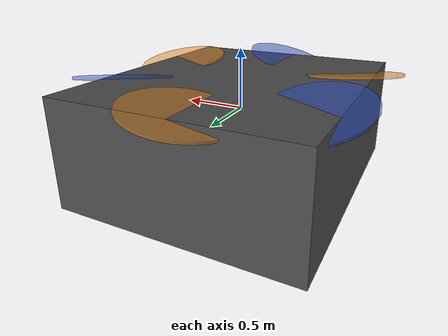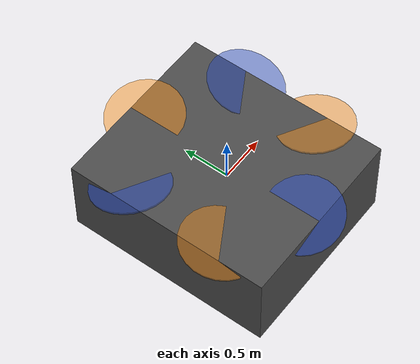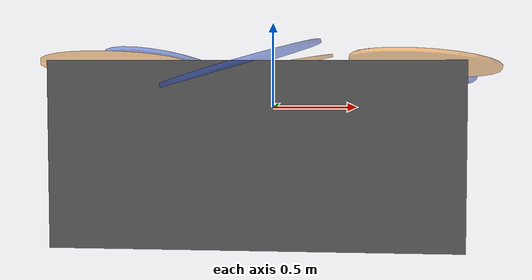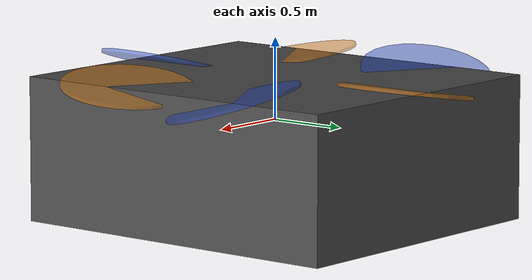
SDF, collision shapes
<?xml version="1.0"?>
<sdf version='1.5'>
  <model name='airfly_hexa'>
    <!-- Main body frame Airfly hexacopter  -->
    <link name='base_link'>
      <pose>0 0 0 0 0 0</pose> <!-- This pose is the visual offset of the vehicle + the reference frame -->
      <inertial>
        <pose>0.00248395293577031 0.000136495293976524 -0.174981555965809 0 0 0</pose> <!-- This pose is the center of mass of the vehicle 155.931459830594-->
        <mass>95</mass>
        <inertia>
          <ixx>2.93015030357653</ixx>
          <ixy>2.67282084525685e-05</ixy>
          <ixz>0.0449250956057515</ixz>
          <iyy>2.98862504201484</iyy>
          <iyz>6.44540809146554e-05</iyz>
          <izz>4.78028912562783</izz>
        </inertia>
      </inertial>
      <collision name='base_link_collision'>
        <pose>0 0 -0.175 0 0 0</pose> <!-- The z Axis has an offset to create a centered box for collisions https://answers.gazebosim.org//question/17457/robot-slips-after-upgrade-to-kinetic/ -->
        <geometry>
          <box>
            <size>1.944514 2.23189 0.886246</size>
          </box>
        </geometry>
        <surface>
          <friction>
            <ode>
              <mu>100000.0</mu>
              <mu2>100000.0</mu2>
              <fdir1>1 0 0</fdir1>
              <slip1>0.0</slip1>
              <slip2>0.0</slip2>
            </ode>
          </friction>
          <contact>
            <ode>
              <min_depth>0.01</min_depth>
              <max_vel>1</max_vel>
            </ode>
          </contact>
        </surface>
      </collision>
      <visual name='base_link_visual'>
        <pose>0 0 0 0 0 0</pose>
        <geometry>
          <mesh>
            <scale>1 1 1</scale>
            <uri>model://airfly_hexa/meshes/base_link.STL</uri>
          </mesh>
        </geometry>
        <material>
          <script>
            <name>Gazebo/DarkGrey</name>
            <uri>file://media/materials/scripts/gazebo.material</uri>
          </script>
        </material>
      </visual>
      <gravity>1</gravity>
      <velocity_decay/>
   </link>

   <!-- IMU link-->
   <link name='/imu_link'>
      <pose>0 0 0 0 0 0</pose>
      <inertial>
        <pose>0 0 0 0 0 0</pose>
        <mass>0.015</mass>
        <inertia>
          <ixx>1e-05</ixx>
          <ixy>0</ixy>
          <ixz>0</ixz>
          <iyy>1e-05</iyy>
          <iyz>0</iyz>
          <izz>1e-05</izz>
        </inertia>
      </inertial>
    </link>
    <joint name='/imu_joint' type='revolute'>
      <child>/imu_link</child>
      <parent>base_link</parent>
      <axis>
        <xyz>1 0 0</xyz>
        <limit>
          <lower>0</lower>
          <upper>0</upper>
          <effort>0</effort>
          <velocity>0</velocity>
        </limit>
        <dynamics>
          <spring_reference>0</spring_reference>
          <spring_stiffness>0</spring_stiffness>
        </dynamics>
        <use_parent_model_frame>1</use_parent_model_frame>
      </axis>
    </joint>

    <!-- Rotor 1-->
    <link name='rotor_0'>
    <pose>0.8659 0.40285 0.25157 0.24252 0.13781 0.017864</pose>
      <inertial>
        <pose>-5.7506e-05 -0.0012881 7.3747e-05 0 0 0</pose>
        <mass>0.4177</mass>
        <inertia>
          <ixx>0.0053435</ixx>
          <ixy>-3.2435e-05</ixy>
          <ixz>-1.7561e-07</ixz>
          <iyy>0.00011193</iyy>
          <iyz>1.3276e-07</iyz>
          <izz>0.005443</izz>
        </inertia>
      </inertial>
      <collision name='rotor_0_collision'>
        <pose>0 0 0 0 0 0</pose>
        <geometry>
          <cylinder>
            <length>0.02</length>
            <radius>0.406</radius>
          </cylinder>
        </geometry>
        <surface>
          <contact>
            <ode/>
          </contact>
          <friction>
            <ode/>
          </friction>
        </surface>
      </collision>
      <visual name='rotor_0_visual'>
        <pose>0 0 0 0 0 0</pose>
        <geometry>
          <mesh>
            <scale>1 1 1</scale>
            <uri>model://airfly_hexa/meshes/rotor_1.STL</uri>
          </mesh>
        </geometry>
        <material>
          <script>
            <name>Gazebo/BlueTransparent</name>
            <uri>file://media/materials/scripts/gazebo.material</uri>
          </script>
        </material>
      </visual>
      <gravity>1</gravity>
      <velocity_decay/>
      <self_collide>0</self_collide>
    </link>
    <joint name='rotor_0_joint' type='revolute'>
      <child>rotor_0</child>
      <parent>base_link</parent>
      <pose>0 0 0 0 0 0</pose>
      <axis>
        <xyz>0 0 1</xyz>
        <limit>
          <lower>-1e+16</lower>
          <upper>1e+16</upper>
        </limit>
        <dynamics>
          <spring_reference>0</spring_reference>
          <spring_stiffness>0</spring_stiffness>
        </dynamics>
        <use_parent_model_frame>1</use_parent_model_frame>
      </axis>
    </joint>

    <!-- Rotor 2-->
    <link name='rotor_1'>
    <pose>0.85004 -0.42999 0.25919 0.167 -0.005845 2.6538</pose>
      <inertial>
        <pose>-5.7448e-05 -0.0012862 7.3696e-05 0 0 0</pose>
        <mass>0.4177</mass>
        <inertia>
          <ixx>0.0053435</ixx>
          <ixy>-3.2434e-05</ixy>
          <ixz>-1.7607e-07</ixz>
          <iyy>0.00011193</iyy>
          <iyz>1.3339e-07</iyz>
          <izz>0.005443</izz>
        </inertia>
      </inertial>
      <collision name='rotor_1_collision'>
        <pose>0 0 0 0 0 0</pose>
        <geometry>
          <cylinder>
            <length>0.02</length>
            <radius>0.406</radius>
          </cylinder>
        </geometry>
        <surface>
          <contact>
            <ode/>
          </contact>
          <friction>
            <ode/>
          </friction>
        </surface>
      </collision>
      <visual name='rotor_1_visual'>
        <pose>0 0 0 0 0 0</pose>
        <geometry>
          <mesh>
            <scale>1 1 1</scale>
            <uri>model://airfly_hexa/meshes/rotor_1.STL</uri>
          </mesh>
        </geometry>
        <material>
          <script>
            <name>Gazebo/OrangeTransparent</name>
            <uri>file://media/materials/scripts/gazebo.material</uri>
          </script>
        </material>
      </visual>
      <gravity>1</gravity>
      <velocity_decay/>
      <self_collide>0</self_collide>
    </link>
    <joint name='rotor_1_joint' type='revolute'>
      <child>rotor_1</child>
      <parent>base_link</parent>
      <pose>0 0 0 0 0 0</pose>
      <axis>
        <xyz>0 0 1</xyz>
        <limit>
          <lower>-1e+16</lower>
          <upper>1e+16</upper>
        </limit>
        <dynamics>
          <spring_reference>0</spring_reference>
          <spring_stiffness>0</spring_stiffness>
        </dynamics>
        <use_parent_model_frame>1</use_parent_model_frame>
      </axis>
    </joint>

    <!-- Rotor 3-->
    <link name='rotor_2'>
    <pose>-0.084071 -0.95131 0.25157 -0.0029981 0.27825 3.1318</pose>
      <inertial>
        <pose>-5.7506e-05 -0.0012881 7.3729e-05 0 0 0</pose>
        <mass>0.4177</mass>
        <inertia>
          <ixx>0.0053435</ixx>
          <ixy>-3.2435e-05</ixy>
          <ixz>-1.7611e-07</ixz>
          <iyy>0.00011193</iyy>
          <iyz>1.3111e-07</iyz>
          <izz>0.005443</izz>
        </inertia>
      </inertial>
      <collision name='rotor_2_collision'>
        <pose>0 0 0 0 0 0</pose>
        <geometry>
          <cylinder>
            <length>0.02</length>
            <radius>0.406</radius>
          </cylinder>
        </geometry>
        <surface>
          <contact>
            <ode/>
          </contact>
          <friction>
            <ode/>
          </friction>
        </surface>
      </collision>
      <visual name='rotor_2_visual'>
        <pose>0 0 0 0 0 0</pose>
        <geometry>
          <mesh>
            <scale>1 1 1</scale>
            <uri>model://airfly_hexa/meshes/rotor_1.STL</uri>
          </mesh>
        </geometry>
        <material>
          <script>
            <name>Gazebo/BlueTransparent</name>
            <uri>file://media/materials/scripts/gazebo.material</uri>
          </script>
        </material>
      </visual>
      <gravity>1</gravity>
      <velocity_decay/>
      <self_collide>0</self_collide>
    </link>
    <joint name='rotor_2_joint' type='revolute'>
      <child>rotor_2</child>
      <parent>base_link</parent>
      <pose>0 0 0 0 0 0</pose>
      <axis>
        <xyz>0 0 1</xyz>
        <limit>
          <lower>-1e+16</lower>
          <upper>1e+16</upper>
        </limit>
        <dynamics>
          <spring_reference>0</spring_reference>
          <spring_stiffness>0</spring_stiffness>
        </dynamics>
        <use_parent_model_frame>1</use_parent_model_frame>
      </axis>
    </joint>

    <!-- Rotor 4-->
    <link name='rotor_3'>
    <pose>-0.7974 -0.52116 0.25919 0.14504 0.083268 0.0071482</pose>
      <inertial>
        <pose>-5.7507e-05 -0.0012881 7.3743e-05 0 0 0</pose>
        <mass>0.4177</mass>
        <inertia>
          <ixx>0.0053435</ixx>
          <ixy>-3.2434e-05</ixy>
          <ixz>-1.756e-07</ixz>
          <iyy>0.00011193</iyy>
          <iyz>1.3269e-07</iyz>
          <izz>0.005443</izz>
        </inertia>
      </inertial>
      <collision name='rotor_3_collision'>
        <pose>0 0 0 0 0 0</pose>
        <geometry>
          <cylinder>
            <length>0.02</length>
            <radius>0.406</radius>
          </cylinder>
        </geometry>
        <surface>
          <contact>
            <ode/>
          </contact>
          <friction>
            <ode/>
          </friction>
        </surface>
      </collision>
      <visual name='rotor_3_visual'>
        <pose>0 0 0 0 0 0</pose>
        <geometry>
          <mesh>
            <scale>1 1 1</scale>
            <uri>model://airfly_hexa/meshes/rotor_1.STL</uri>
          </mesh>
        </geometry>
        <material>
          <script>
            <name>Gazebo/OrangeTransparent</name>
            <uri>file://media/materials/scripts/gazebo.material</uri>
          </script>
        </material>
      </visual>
      <gravity>1</gravity>
      <velocity_decay/>
      <self_collide>0</self_collide>
    </link>
    <joint name='rotor_3_joint' type='revolute'>
      <child>rotor_3</child>
      <parent>base_link</parent>
      <pose>0 0 0 0 0 0</pose>
      <axis>
        <xyz>0 0 1</xyz>
        <limit>
          <lower>-1e+16</lower>
          <upper>1e+16</upper>
        </limit>
        <dynamics>
          <spring_reference>0</spring_reference>
          <spring_stiffness>0</spring_stiffness>
        </dynamics>
        <use_parent_model_frame>1</use_parent_model_frame>
      </axis>
    </joint>

    <!-- Rotor 5-->
    <link name='rotor_4'>
    <pose>-0.78182 0.54846 0.25157 -0.24255 0.13775 -0.01577</pose>
      <inertial>
        <pose>-5.7509e-05 -0.0012881 7.3721e-05 0 0 0</pose>
        <mass>0.4177</mass>
        <inertia>
          <ixx>0.0053435</ixx>
          <ixy>-3.2435e-05</ixy>
          <ixz>-1.7558e-07</ixz>
          <iyy>0.00011193</iyy>
          <iyz>1.3236e-07</iyz>
          <izz>0.005443</izz>
        </inertia>
      </inertial>
      <collision name='rotor_4_collision'>
        <pose>0 0 0 0 0 0</pose>
        <geometry>
          <cylinder>
            <length>0.02</length>
            <radius>0.406</radius>
          </cylinder>
        </geometry>
        <surface>
          <contact>
            <ode/>
          </contact>
          <friction>
            <ode/>
          </friction>
        </surface>
      </collision>
      <visual name='rotor_4_visual'>
        <pose>0 0 0 0 0 0</pose>
        <geometry>
          <mesh>
            <scale>1 1 1</scale>
            <uri>model://airfly_hexa/meshes/rotor_1.STL</uri>
          </mesh>
        </geometry>
        <material>
          <script>
            <name>Gazebo/BlueTransparent</name>
            <uri>file://media/materials/scripts/gazebo.material</uri>
          </script>
        </material>
      </visual>
      <gravity>1</gravity>
      <velocity_decay/>
      <self_collide>0</self_collide>
    </link>
    <joint name='rotor_4_joint' type='revolute'>
      <child>rotor_4</child>
      <parent>base_link</parent>
      <pose>0 0 0 0 0 0</pose>
      <axis>
        <xyz>0 0 1</xyz>
        <limit>
          <lower>-1e+16</lower>
          <upper>1e+16</upper>
        </limit>
        <dynamics>
          <spring_reference>0</spring_reference>
          <spring_stiffness>0</spring_stiffness>
        </dynamics>
        <use_parent_model_frame>1</use_parent_model_frame>
      </axis>
    </joint>

    <!-- Rotor 6-->
    <link name='rotor_5'>
    <pose>-0.052635 0.95115 0.25919 -2.5657e-05 -0.1671 0.0013258</pose>
      <inertial>
        <pose>-5.7509e-05 -0.0012881 7.3721e-05 0 0 0</pose>
        <mass>0.4177</mass>
        <inertia>
          <ixx>0.0053435</ixx>
          <ixy>-3.2435e-05</ixy>
          <ixz>-1.7558e-07</ixz>
          <iyy>0.00011193</iyy>
          <iyz>1.3236e-07</iyz>
          <izz>0.005443</izz>
        </inertia>
      </inertial>
      <collision name='rotor_5_collision'>
        <pose>0 0 0 0 0 0</pose>
        <geometry>
          <cylinder>
            <length>0.02</length>
            <radius>0.406</radius>
          </cylinder>
        </geometry>
        <surface>
          <contact>
            <ode/>
          </contact>
          <friction>
            <ode/>
          </friction>
        </surface>
      </collision>
      <visual name='rotor_5_visual'>
        <pose>0 0 0 0 0 0</pose>
        <geometry>
          <mesh>
            <scale>1 1 1</scale>
            <uri>model://airfly_hexa/meshes/rotor_1.STL</uri>
          </mesh>
        </geometry>
        <material>
          <script>
            <name>Gazebo/OrangeTransparent</name>
            <uri>file://media/materials/scripts/gazebo.material</uri>
          </script>
        </material>
      </visual>
      <gravity>1</gravity>
      <velocity_decay/>
      <self_collide>0</self_collide>
    </link>
    <joint name='rotor_5_joint' type='revolute'>
      <child>rotor_5</child>
      <parent>base_link</parent>
      <pose>0 0 0 0 0 0</pose>
      <axis>
        <xyz>0 0 1</xyz>
        <limit>
          <lower>-1e+16</lower>
          <upper>1e+16</upper>
        </limit>
        <dynamics>
          <spring_reference>0</spring_reference>
          <spring_stiffness>0</spring_stiffness>
        </dynamics>
        <use_parent_model_frame>1</use_parent_model_frame>
      </axis>
    </joint>

    <!--LiDAR -->
    <link name="lidar_lite::link">
      <pose>0 0 -0.36 0 0 0</pose>
      <inertial>
        <pose>0 0 0 0 0 0</pose>
        <mass>0.01</mass>
        <inertia>
          <ixx>2.1733e-6</ixx>
          <ixy>0</ixy>
          <ixz>0</ixz>
          <iyy>2.1733e-6</iyy>
          <iyz>0</iyz>
          <izz>1.8e-7</izz>
        </inertia>
      </inertial>
      <visual name="lidar_lite_visual">
      	<pose>0 0 0 0 0 0</pose>
        <geometry>
          <mesh>
            <scale>0.002 0.002 0.002</scale>
            <uri>model://airfly_hexa/meshes/Lidar_Lite_Laser_Optics.STL</uri>
          </mesh>
        </geometry>
        <material>
          <script>
            <name>Gazebo/White</name>
            <uri>file://media/materials/scripts/gazebo.material</uri>
          </script>
        </material>
      </visual>
      <sensor name="laser" type="ray">
        <pose>0 0 -0.21 0 1.57079633 0</pose>
        <ray>
          <scan>
            <horizontal>
              <samples>1</samples>
              <resolution>1</resolution>
              <min_angle>-0</min_angle>
              <max_angle>0</max_angle>
            </horizontal>
          </scan>
          <range>
            <min>0.06</min>
            <max>35</max>
            <resolution>0.01</resolution>
          </range>
          <noise>
            <type>gaussian</type>
            <mean>0.0</mean>
            <stddev>0.02</stddev>
          </noise>
        </ray>
        <plugin name="LaserLitePlugin" filename="libgazebo_lidar_lite_plugin.so">
          <robotNamespace></robotNamespace>
          <min_distance>0.08</min_distance>
          <max_distance>30.0</max_distance>
        </plugin>
        <always_on>1</always_on>
        <update_rate>20</update_rate>
        <visualize>true</visualize>
      </sensor>
    </link>

    <!--LiDAR Joint  -->
    <joint name="lidar_joint" type="fixed">
      <child>lidar_lite::link</child>
      <parent>base_link</parent>
      <axis>
        <use_parent_model_frame>1</use_parent_model_frame>
      </axis>
	  </joint>

    <!-- Rosbag Plugin-->
    <plugin name='rosbag' filename='libgazebo_multirotor_base_plugin.so'>
      <robotNamespace/>
      <linkName>base_link</linkName>
      <rotorVelocitySlowdownSim>10</rotorVelocitySlowdownSim>
    </plugin>

    <plugin name='front_right_motor_model' filename='libgazebo_motor_model.so'>
      <robotNamespace></robotNamespace>
      <jointName>rotor_1_joint</jointName>
      <linkName>rotor_1</linkName>
      <turningDirection>ccw</turningDirection>
      <timeConstantUp>0.0125</timeConstantUp>
      <timeConstantDown>0.025</timeConstantDown>
      <maxRotVelocity>470</maxRotVelocity>
      <motorConstant>12.010474e-04</motorConstant>
      <momentConstant>0.06</momentConstant>
      <commandSubTopic>/gazebo/command/motor_speed</commandSubTopic>
      <motorNumber>4</motorNumber>
      <rotorDragCoefficient>0.002557889</rotorDragCoefficient>
      <rollingMomentCoefficient>3.172e-06</rollingMomentCoefficient>
      <motorSpeedPubTopic>/motor_speed/4</motorSpeedPubTopic>
      <rotorVelocitySlowdownSim>3</rotorVelocitySlowdownSim>
    </plugin>

    <plugin name='back_left_motor_model' filename='libgazebo_motor_model.so'>
      <robotNamespace></robotNamespace>
      <jointName>rotor_4_joint</jointName>
      <linkName>rotor_4</linkName>
      <turningDirection>cw</turningDirection>
      <timeConstantUp>0.0125</timeConstantUp>
      <timeConstantDown>0.025</timeConstantDown>
      <maxRotVelocity>470</maxRotVelocity>
      <motorConstant>12.010474e-04</motorConstant>
      <momentConstant>0.06</momentConstant>
      <commandSubTopic>/gazebo/command/motor_speed</commandSubTopic>
      <motorNumber>5</motorNumber>
      <rotorDragCoefficient>0.002557889</rotorDragCoefficient>
      <rollingMomentCoefficient>3.172e-06</rollingMomentCoefficient>
      <motorSpeedPubTopic>/motor_speed/5</motorSpeedPubTopic>
      <rotorVelocitySlowdownSim>3</rotorVelocitySlowdownSim>
    </plugin>

    <plugin name='front_left_motor_model' filename='libgazebo_motor_model.so'>
      <robotNamespace></robotNamespace>
      <jointName>rotor_0_joint</jointName>
      <linkName>rotor_0</linkName>
      <turningDirection>cw</turningDirection>
      <timeConstantUp>0.0125</timeConstantUp>
      <timeConstantDown>0.025</timeConstantDown>
      <maxRotVelocity>470</maxRotVelocity>
      <motorConstant>12.010474e-04</motorConstant>
      <momentConstant>0.06</momentConstant>
      <commandSubTopic>/gazebo/command/motor_speed</commandSubTopic>
      <motorNumber>2</motorNumber>
      <rotorDragCoefficient>0.002557889</rotorDragCoefficient>
      <rollingMomentCoefficient>3.172e-06</rollingMomentCoefficient>
      <motorSpeedPubTopic>/motor_speed/2</motorSpeedPubTopic>
      <rotorVelocitySlowdownSim>3</rotorVelocitySlowdownSim>
    </plugin>

    <plugin name='back_right_motor_model' filename='libgazebo_motor_model.so'>
      <robotNamespace></robotNamespace>
      <jointName>rotor_3_joint</jointName>
      <linkName>rotor_3</linkName>
      <turningDirection>ccw</turningDirection>
      <timeConstantUp>0.0125</timeConstantUp>
      <timeConstantDown>0.025</timeConstantDown>
      <maxRotVelocity>470</maxRotVelocity>
      <motorConstant>12.010474e-04</motorConstant>
      <momentConstant>0.06</momentConstant>
      <commandSubTopic>/gazebo/command/motor_speed</commandSubTopic>
      <motorNumber>3</motorNumber>
      <rotorDragCoefficient>0.002557889</rotorDragCoefficient>
      <rollingMomentCoefficient>3.172e-06</rollingMomentCoefficient>
      <motorSpeedPubTopic>/motor_speed/3</motorSpeedPubTopic>
      <rotorVelocitySlowdownSim>3</rotorVelocitySlowdownSim>
    </plugin>

    <plugin name='back_left_motor_model' filename='libgazebo_motor_model.so'>
      <robotNamespace></robotNamespace>
      <jointName>rotor_2_joint</jointName>
      <linkName>rotor_2</linkName>
      <turningDirection>cw</turningDirection>
      <timeConstantUp>0.0125</timeConstantUp>
      <timeConstantDown>0.025</timeConstantDown>
      <maxRotVelocity>470</maxRotVelocity>
      <motorConstant>12.010474e-04</motorConstant>
      <momentConstant>0.06</momentConstant>
      <commandSubTopic>/gazebo/command/motor_speed</commandSubTopic>
      <motorNumber>0</motorNumber>
      <rotorDragCoefficient>0.002557889</rotorDragCoefficient>
      <rollingMomentCoefficient>3.172e-06</rollingMomentCoefficient>
      <motorSpeedPubTopic>/motor_speed/0</motorSpeedPubTopic>
      <rotorVelocitySlowdownSim>3</rotorVelocitySlowdownSim>
    </plugin>

    <plugin name='front_left_motor_model' filename='libgazebo_motor_model.so'>
      <robotNamespace></robotNamespace>
      <jointName>rotor_5_joint</jointName>
      <linkName>rotor_5</linkName>
      <turningDirection>ccw</turningDirection>
      <timeConstantUp>0.0125</timeConstantUp>
      <timeConstantDown>0.025</timeConstantDown>
      <maxRotVelocity>470</maxRotVelocity>
      <motorConstant>12.010474e-04</motorConstant>
      <momentConstant>0.06</momentConstant>
      <commandSubTopic>/gazebo/command/motor_speed</commandSubTopic>
      <motorNumber>1</motorNumber>
      <rotorDragCoefficient>0.002557889</rotorDragCoefficient>
      <rollingMomentCoefficient>3.172e-06</rollingMomentCoefficient>
      <motorSpeedPubTopic>/motor_speed/1</motorSpeedPubTopic>
      <rotorVelocitySlowdownSim>3</rotorVelocitySlowdownSim>
    </plugin>

    <!-- GPS Plugin-->
    <plugin name='gps_plugin' filename='libgazebo_gps_plugin.so'>
      <robotNamespace/>
      <gpsNoise>true</gpsNoise>
    </plugin>

    <!-- Magnetometer Plugin-->
    <plugin name='magnetometer_plugin' filename='libgazebo_magnetometer_plugin.so'>
      <robotNamespace/>
      <pubRate>20</pubRate>
      <noiseDensity>0.0004</noiseDensity>
      <randomWalk>6.4e-06</randomWalk>
      <biasCorrelationTime>600</biasCorrelationTime>
      <magTopic>/mag</magTopic>
    </plugin>

    <!-- Barometer Plugin-->
    <plugin name='barometer_plugin' filename='libgazebo_barometer_plugin.so'>
      <robotNamespace/>
      <pubRate>10</pubRate>
      <baroTopic>/baro</baroTopic>
    </plugin>

    <!-- Mavlink Plugin-->
    <plugin name='mavlink_interface' filename='libgazebo_mavlink_interface.so'>
      <robotNamespace/>
      <imuSubTopic>/imu</imuSubTopic>
      <gpsSubTopic>/gps</gpsSubTopic>
      <magSubTopic>/mag</magSubTopic>
      <baroSubTopic>/baro</baroSubTopic>
      <mavlink_addr>INADDR_ANY</mavlink_addr>
      <mavlink_udp_port>14560</mavlink_udp_port>
      <mavlink_tcp_port>4560</mavlink_tcp_port>
      <serialEnabled>0</serialEnabled>
      <serialDevice>/dev/ttyACM0</serialDevice>
      <baudRate>921600</baudRate>
      <qgc_addr>INADDR_ANY</qgc_addr>
      <qgc_udp_port>14550</qgc_udp_port>
      <sdk_addr>INADDR_ANY</sdk_addr>
      <sdk_udp_port>14540</sdk_udp_port>
      <hil_mode>0</hil_mode>
      <hil_state_level>0</hil_state_level>
      <enable_lockstep>0</enable_lockstep>
      <use_tcp>1</use_tcp>
      <vehicle_is_tailsitter>0</vehicle_is_tailsitter>
      <send_vision_estimation>1</send_vision_estimation>
      <send_odometry>0</send_odometry>
      <motorSpeedCommandPubTopic>/gazebo/command/motor_speed</motorSpeedCommandPubTopic>
      <control_channels>
        <channel name='rotor0'>
          <input_index>0</input_index>
          <input_offset>0</input_offset>
          <input_scaling>470</input_scaling>
          <zero_position_disarmed>0</zero_position_disarmed>
          <zero_position_armed>100</zero_position_armed>
          <joint_control_type>velocity</joint_control_type>
          <joint_name>rotor_2_joint</joint_name>
        </channel>
        <channel name='rotor1'>
          <input_index>1</input_index>
          <input_offset>0</input_offset>
          <input_scaling>470</input_scaling>
          <zero_position_disarmed>0</zero_position_disarmed>
          <zero_position_armed>100</zero_position_armed>
          <joint_control_type>velocity</joint_control_type>
          <joint_name>rotor_5_joint</joint_name>
        </channel>
        <channel name='rotor2'>
          <input_index>2</input_index>
          <input_offset>0</input_offset>
          <input_scaling>470</input_scaling>
          <zero_position_disarmed>0</zero_position_disarmed>
          <zero_position_armed>100</zero_position_armed>
          <joint_control_type>velocity</joint_control_type>
          <joint_name>rotor_0_joint</joint_name>
        </channel>
        <channel name='rotor3'>
          <input_index>3</input_index>
          <input_offset>0</input_offset>
          <input_scaling>470</input_scaling>
          <zero_position_disarmed>0</zero_position_disarmed>
          <zero_position_armed>100</zero_position_armed>
          <joint_control_type>velocity</joint_control_type>
          <joint_name>rotor_3_joint</joint_name>
        </channel>
        <channel name='rotor4'>
          <input_index>4</input_index>
          <input_offset>0</input_offset>
          <input_scaling>470</input_scaling>
          <zero_position_disarmed>0</zero_position_disarmed>
          <zero_position_armed>100</zero_position_armed>
          <joint_control_type>velocity</joint_control_type>
          <joint_name>rotor_1_joint</joint_name>
        </channel>
        <channel name='rotor5'>
          <input_index>5</input_index>
          <input_offset>0</input_offset>
          <input_scaling>470</input_scaling>
          <zero_position_disarmed>0</zero_position_disarmed>
          <zero_position_armed>100</zero_position_armed>
          <joint_control_type>velocity</joint_control_type>
          <joint_name>rotor_4_joint</joint_name>
        </channel>
      </control_channels>
    </plugin>
    <static>0</static>

    <!-- IMU plugin-->
    <plugin name='rotors_gazebo_imu_plugin' filename='libgazebo_imu_plugin.so'>
      <robotNamespace/>
      <linkName>/imu_link</linkName>
      <imuTopic>/imu</imuTopic>
      <gyroscopeNoiseDensity>0.0003394</gyroscopeNoiseDensity>
      <gyroscopeRandomWalk>3.8785e-05</gyroscopeRandomWalk>
      <gyroscopeBiasCorrelationTime>1000.0</gyroscopeBiasCorrelationTime>
      <gyroscopeTurnOnBiasSigma>0.0087</gyroscopeTurnOnBiasSigma>
      <accelerometerNoiseDensity>0.004</accelerometerNoiseDensity>
      <accelerometerRandomWalk>0.006</accelerometerRandomWalk>
      <accelerometerBiasCorrelationTime>300.0</accelerometerBiasCorrelationTime>
      <accelerometerTurnOnBiasSigma>0.196</accelerometerTurnOnBiasSigma>
    </plugin>

  </model>
</sdf>
